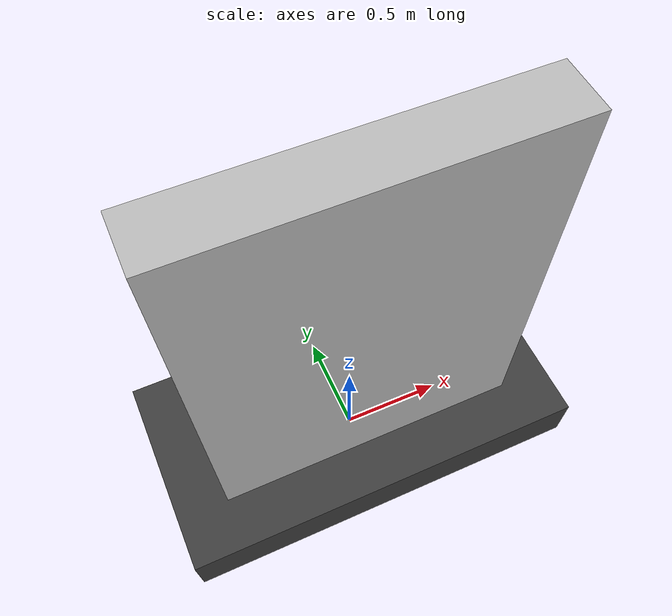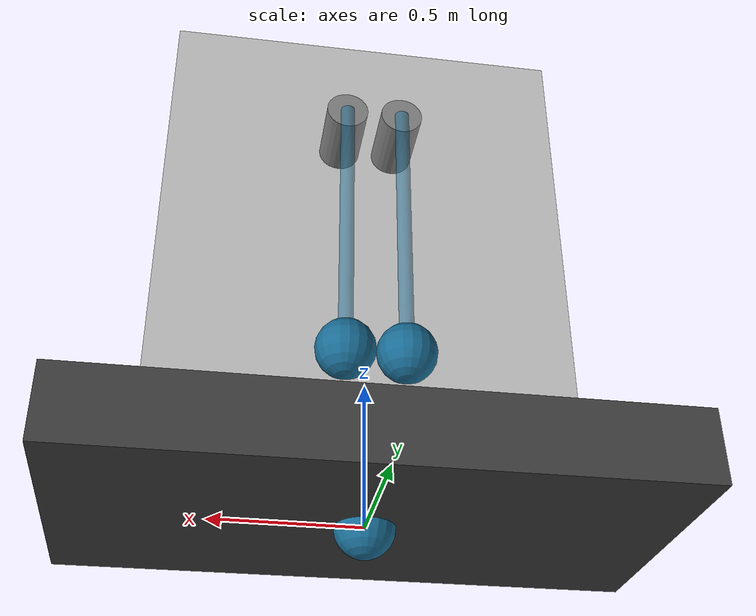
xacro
<?xml version="1.0"?>

<robot name="pendulum_newton" xmlns:xacro="http://www.ros.org/wiki/xacro">

    <xacro:property name="pendulum_newton_mass" value="1.0"/>
    <xacro:property name="pendulum_newton_length" value="1.0"/>

    <material name="OA">
        <color rgba="0.101960784 0.42745098 0.588235294 1.0"/>
    </material>
    <material name="OATransparent">
        <color rgba="0.101960784 0.42745098 0.588235294 0.5"/>
    </material>
    <material name="Gray">
        <color rgba="0.5 0.5 0.5 1.0"/>
    </material>
    <material name="Darkgray">
        <color rgba="0.25 0.25 0.25 1.0"/>
    </material>
    <material name="Lightgray">
        <color rgba="0.75 0.75 0.75 1.0"/>
    </material>

    <gazebo reference="link_base">
        <turnGravityOff>false</turnGravityOff>
        <selfCollide>true</selfCollide>
    </gazebo>
    <gazebo reference="link_pendulum_newton">
        <turnGravityOff>false</turnGravityOff>
        <selfCollide>true</selfCollide>
        <surface>
        <bounce>
          <restitution_coefficient>1.0</restitution_coefficient>
          <threshold>0.0</threshold>
        </bounce>
        <friction>
          <ode>
            <mu>0.0</mu>
            <mu2>0.0</mu2>
          </ode>
        </friction>
        </surface>
        <kp>10000000.0</kp>
        <kd>0.0</kd>
        <mu1>0.0</mu1>
        <mu2>0.0</mu2>
        <maxVel>10000000.0</maxVel>
        <minDepth>0.0</minDepth>
    </gazebo>
    <gazebo reference="link_pendulum_newton_2">
        <turnGravityOff>false</turnGravityOff>
        <selfCollide>true</selfCollide>
        <surface>
        <bounce>
          <restitution_coefficient>1.0</restitution_coefficient>
          <threshold>0.0</threshold>
        </bounce>
        <friction>
          <ode>
            <mu>0.0</mu>
            <mu2>0.0</mu2>
          </ode>
        </friction>
        </surface>
        <kp>10000000.0</kp>
        <kd>0.0</kd>
        <mu1>0.0</mu1>
        <mu2>0.0</mu2>
        <maxVel>10000000.0</maxVel>
        <minDepth>0.0</minDepth>
    </gazebo>
    <gazebo>
        <plugin name="gazebo_ros_template" filename="libgazebo_ros_template.so">
            <TFpubInterval>0.05</TFpubInterval>
        </plugin>
        <plugin name="gazebo_ros_control" filename="libgazebo_ros_control.so">
        </plugin>
        <plugin name="gazebo_ros_state" filename="libgazebo_ros_state.so">
            <linkName>link_pendulum_newton</linkName>
            <pubInterval>0.05</pubInterval>
            <pubContinously>true</pubContinously>
        </plugin>
    </gazebo>

    <link name="link_base">
        <inertial>
            <origin xyz="0.0 0.0 0.0" rpy="0.0 0.0 0.0"/>
            <mass value="100.0"/>
            <inertia  ixx="100.0" ixy="0.0"  ixz="0.0"  iyy="100.0"  iyz="0.0"  izz="100.0"/>
        </inertial>
        <collision>
            <origin xyz="0.0 0.0 0.125"/>
            <geometry>
                <box size="2.0 1.0 0.25"/>
            </geometry>
        </collision>
        <visual>
            <origin xyz="0.0 0.0 0.0"/>
            <geometry>
                <sphere radius="0.1"/>
            </geometry>
            <material name="OA"/>
        </visual>
    </link>
    <link name="link_pendulum_newton_body"> <!-- if links in between do not have physical properties JSP does not publish properly! -->
        <visual>
            <origin xyz="0.0 0.0 0.125"/>
            <geometry>
                <box size="2.0 1.0 0.25"/>
            </geometry>
            <material name="Darkgray"/>
        </visual>
        <visual>
            <origin xyz="0.0 -0.125 1.15"/>
            <geometry>
                <box size="1.5 0.25 1.8"/>
            </geometry>
            <material name="Lightgray"/>
        </visual>
    </link>
    <link name="link_pendulum_newton">
        <inertial>
            <origin xyz="0.0 0.0 ${-1.0*pendulum_newton_length}" rpy="0.0 0.0 0.0"/>
            <mass value="${pendulum_newton_mass}"/>
            <inertia  ixx="${0.004*pendulum_newton_mass}" ixy="0.0"  ixz="0.0"  iyy="${0.004*pendulum_newton_mass}"  iyz="0.0"  izz="${0.004*pendulum_newton_mass}"/>
        </inertial>
        <collision>
            <origin xyz="0.0 0.0 ${-1.0*pendulum_newton_length}"/>
            <geometry>
                <sphere radius="0.1"/>
            </geometry>
        </collision>
        <visual>
            <origin xyz="0.0 -0.2 0.0" rpy="-1.570796327 0.0 0.0"/>
            <geometry>
                <cylinder length="0.4" radius="0.075"/>
            </geometry>
            <material name="Gray"/>
        </visual>
        <visual>
            <origin xyz="0.0 0.0 ${-1.0*pendulum_newton_length/2.0}"/>
            <geometry>
                <cylinder length="${pendulum_newton_length}" radius="0.025"/>
            </geometry>
            <material name="OATransparent"/>
        </visual>
        <visual>
            <origin xyz="0.0 0.0 ${-1.0*pendulum_newton_length}"/>
            <geometry>
                <sphere radius="0.1"/>
            </geometry>
            <material name="OA"/>
        </visual>
    </link>

    <link name="link_pendulum_newton_2">
        <inertial>
            <origin xyz="0.0 0.0 ${-1.0*pendulum_newton_length}" rpy="0.0 0.0 0.0"/>
            <mass value="${pendulum_newton_mass}"/>
            <inertia  ixx="${0.004*pendulum_newton_mass}" ixy="0.0"  ixz="0.0"  iyy="${0.004*pendulum_newton_mass}"  iyz="0.0"  izz="${0.004*pendulum_newton_mass}"/>
        </inertial>
        <collision>
            <origin xyz="0.0 0.0 ${-1.0*pendulum_newton_length}"/>
            <geometry>
                <sphere radius="0.1"/>
            </geometry>
        </collision>
        <visual>
            <origin xyz="0.0 -0.2 0.0" rpy="-1.570796327 0.0 0.0"/>
            <geometry>
                <cylinder length="0.4" radius="0.075"/>
            </geometry>
            <material name="Gray"/>
        </visual>
        <visual>
            <origin xyz="0.0 0.0 ${-1.0*pendulum_newton_length/2.0}"/>
            <geometry>
                <cylinder length="${pendulum_newton_length}" radius="0.025"/>
            </geometry>
            <material name="OATransparent"/>
        </visual>
        <visual>
            <origin xyz="0.0 0.0 ${-1.0*pendulum_newton_length}"/>
            <geometry>
                <sphere radius="0.1"/>
            </geometry>
            <material name="OA"/>
        </visual>
    </link>

    <joint name="joint_pendulum_newton_body" type="fixed">
        <origin xyz="0.0 0.0 0.0" rpy="0.0 0.0 0.0"/>
        <parent link="link_base"/>
        <child link="link_pendulum_newton_body"/>
    </joint>
    <joint name="joint_pendulum_newton" type="revolute">
        <axis xyz="0 1 0" />
        <origin xyz="-0.1 0.25 1.5" rpy="0.0 0.0 0.0"/>
        <parent link="link_base"/>
        <child link="link_pendulum_newton"/>
        <limit lower="-3.1415" upper="3.1415" effort="0.0" velocity="1000000.0"/>
        <dynamics damping="0.0" friction="0.0"/>
    </joint>
    <joint name="joint_pendulum_newton_2" type="revolute">
        <axis xyz="0 1 0" />
        <origin xyz="0.1 0.25 1.5" rpy="0.0 0.0 0.0"/>
        <parent link="link_base"/>
        <child link="link_pendulum_newton_2"/>
        <limit lower="-3.1415" upper="3.1415" effort="0.0" velocity="1000000.0"/>
        <dynamics damping="0.0" friction="0.0"/>
    </joint>

    <transmission name="transmission_pendulum_newton_suspension">
        <type>transmission_interface/SimpleTransmission</type>
        <joint name="joint_pendulum_newton">
          <hardwareInterface>hardware_interface/EffortJointInterface</hardwareInterface>
        </joint>
        <actuator name="actuator_pendulum_newton">
          <hardwareInterface>hardware_interface/EffortJointInterface</hardwareInterface>
          <mechanicalReduction>1</mechanicalReduction>
        </actuator>
    </transmission>

    <transmission name="transmission_pendulum_newton_suspension_2">
        <type>transmission_interface/SimpleTransmission</type>
        <joint name="joint_pendulum_newton_2">
          <hardwareInterface>hardware_interface/EffortJointInterface</hardwareInterface>
        </joint>
        <actuator name="actuator_pendulum_newton_2">
          <hardwareInterface>hardware_interface/EffortJointInterface</hardwareInterface>
          <mechanicalReduction>1</mechanicalReduction>
        </actuator>
    </transmission>

</robot>
